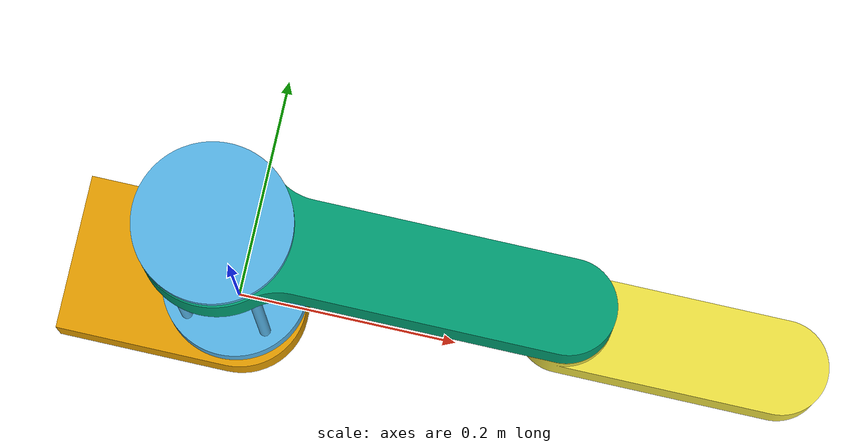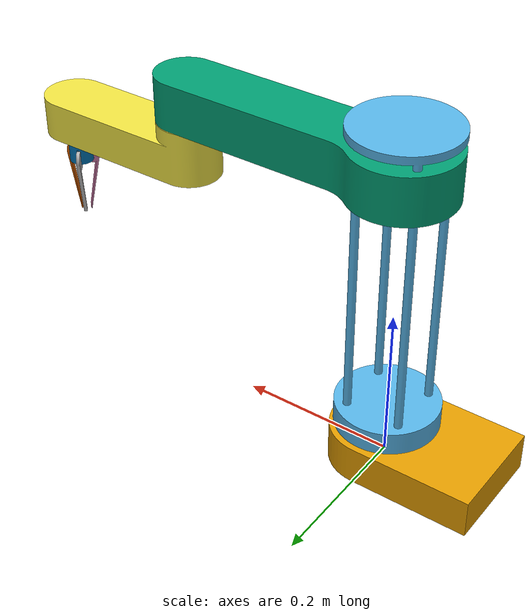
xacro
<?xml version="1.0"?>
<robot xmlns:xacro="http://www.ros.org/wiki/xacro" name="bizon">
    <xacro:arg name="initial_positions_file" default="initial_positions.yaml" />

    <!-- Import bizon urdf file -->
    <xacro:include filename="$(find bizon_description)/urdf/bizon.urdf.xacro" />

    <!-- Import control_xacro -->
    <!--xacro:include filename="bizon.ros2_control.xacro" /-->

    <xacro:bizon_ros2_control name="FakeSystem" initial_positions_file="$(arg initial_positions_file)"/>

</robot>

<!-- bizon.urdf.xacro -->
<robot xmlns:xacro="http://wiki.ros.org/xacro" name="bizon">
    <xacro:arg name="prefix" default="bizon2" />

    <xacro:include
        filename="$(find bizon_description)/urdf/bizon_description.urdf.xacro" />
    <!--xacro:include filename="$(find bizon_description)/urdf/bizon_mk1/hand.xacro" /-->

    <xacro:arg name="port_id" default="30200" />
    <xacro:arg name="ros2_control_hardware_type" default="isaac" />
    <xacro:arg name="controller" default="true" />

    <!--xacro:hand prefix="$(arg prefix)" xyz="0 0 -0.015" rpy="${pi} 0 0"
        connected_to="$(arg prefix)tip_link" safety_distance="0.01" /-->
    <xacro:bizon_macro prefix="$(arg prefix)" port_id="$(arg port_id)"
        ros2_control_hardware_type="$(arg ros2_control_hardware_type)"
        controller="$(arg controller)" />

    <xacro:if value="$(arg controller)">
        <xacro:include filename="$(find bizon_description)/urdf/bizon_system_interface.xacro" />
        <xacro:bizon_system_interface
            ros2_control_hardware_type="$(arg ros2_control_hardware_type)"
            prefix="$(arg prefix)" port_id="$(arg port_id)" />
    </xacro:if>

</robot>

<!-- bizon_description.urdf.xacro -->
<robot xmlns:xacro="http://www.ros.org/wiki/xacro">

    <!--xacro:include
    filename="$(find bizon_description)/urdf/bizon_mk1/bizon_system_interface.xacro" /-->

    <xacro:macro name="bizon_macro"
        params="prefix:=^|bizon/ port_id:=^|30200 ros2_control_hardware_type:=^|rviz controller:=^|false">

        <link name="${prefix}base_link">
            <visual>
                <origin rpy="1.57079632679 0.0 0.0" xyz="-0.150 0.070 0.0" />
                <geometry>
                    <mesh filename="package://bizon_description/meshes/base_link.stl"
                        scale="0.001 0.001 0.001" />
                </geometry>
            </visual>
            <collision>
                <origin rpy="1.57079632679 0.0 0.0" xyz="-0.150 0.070 0.0" />
                <geometry>
                    <mesh filename="package://bizon_description/meshes/base_link.stl"
                        scale="0.001 0.001 0.001" />
                </geometry>
            </collision>
            <inertial>
                <inertia ixx="0.00029" ixy="0.0" ixz="0.0" iyy="0.00029" iyz="0.0" izz="0.00052" />
                <origin rpy="1.57079632679 0.0 0.0" xyz="-0.150 0.070 0.0" />
                <mass value="1.00000" />
            </inertial>
        </link>

        <link name="${prefix}tower_link">
            <collision>
                <origin rpy="0.0 0.0 0.0" xyz="0.0 0.0 0.0" />
                <geometry>
                    <mesh filename="package://bizon_description/meshes/link1.stl"
                        scale="0.001 0.001 0.001" />
                </geometry>
            </collision>
            <inertial>
                <inertia ixx="0.02063" ixy="0.0" ixz="0.00004" iyy="0.02063" iyz="0.00001"
                    izz="0.00118" />
                <origin rpy="0.0 0.0 0.0" xyz="0.0 0.0 0.0" />
                <mass value="1.00000" />
            </inertial>
            <visual>
                <origin rpy="0.0 0.0 0.0" xyz="0.0 0.0 0.0" />
                <geometry>
                    <mesh filename="package://bizon_description/meshes/link1.stl"
                        scale="0.001 0.001 0.001" />
                </geometry>
            </visual>
        </link>

        <link name="${prefix}arm1_link">
            <collision>
                <origin rpy="1.57079632679 0 1.57079632679" xyz="-0.060 -0.060 0.0" />
                <geometry>
                    <mesh filename="package://bizon_description/meshes/link2.stl"
                        scale="0.001 0.001 0.001" />
                </geometry>
            </collision>
            <inertial>
                <inertia ixx="0.00135" ixy="-0.00209" ixz="0.00002" iyy="0.00767" iyz="0.00001"
                    izz="0.00877" />
                <origin rpy="1.57079632679 0 1.57079632679" xyz="-0.060 -0.060 0.0" />
                <mass value="1.00000" />
            </inertial>
            <visual>
                <origin rpy="1.57079632679 0 1.57079632679" xyz="-0.060 -0.060 0.0" />
                <geometry>
                    <mesh filename="package://bizon_description/meshes/link2.stl"
                        scale="0.001 0.001 0.001" />
                </geometry>
            </visual>
        </link>

        <link name="${prefix}arm2_link">
            <collision>
                <origin rpy="-1.57079632679 0.0 0.0" xyz="0.0 0.0 0.0" />
                <geometry>
                    <mesh filename="package://bizon_description/meshes/link3.stl"
                        scale="0.001 0.001 0.001" />
                </geometry>
            </collision>
            <inertial>
                <inertia ixx="0.00135" ixy="-0.00209" ixz="0.00002" iyy="0.00767" iyz="0.00001"
                    izz="0.00877" />
                <origin rpy="-1.57079632679 0.0 0.0" xyz="0.0 0.0 0.0" />
                <mass value="1.00000" />
            </inertial>
            <visual>
                <origin rpy="-1.57079632679 0.0 0.0" xyz="0.0 0.0 0.0" />
                <geometry>
                    <mesh filename="package://bizon_description/meshes/link3.stl"
                        scale="0.001 0.001 0.001" />
                </geometry>
            </visual>
        </link>

        <link name="${prefix}gripper_base_link">
            <visual>
                <origin rpy="0 0.0 0.0" xyz="0.0 0.0 0.0" />
                <geometry>
                    <mesh filename="package://bizon_description/meshes/gripper_base.stl"
                        scale="0.001 0.001 0.001" />
                </geometry>
            </visual>
            <collision>
                <origin rpy="0 0.0 0.0" xyz="0.0 0.0 0.0" />
                <geometry>
                    <mesh filename="package://bizon_description/meshes/gripper_base.stl"
                        scale="0.001 0.001 0.001" />
                </geometry>
            </collision>
            <inertial>
                <inertia ixx="0.0001" ixy="0.0" ixz="0.0" iyy="0.0001" iyz="0.0" izz="0.0001" />
                <origin rpy="0 0.0 0.0" xyz="0.0 0.0 0.0" />
                <mass value="1.000" />
            </inertial>
        </link>

        <link name="${prefix}gripper_finger1_link">
            <visual>
                <origin rpy="0.0 0.0 0.0" xyz="0.0 0.0 0.0" />
                <geometry>
                    <mesh filename="package://bizon_description/meshes/gripper_finger_v2.stl"
                        scale="0.001 0.0015 0.001" />
                </geometry>
            </visual>
            <collision>
                <origin rpy="0.0 0.0 0.0" xyz="0.0 0.0 0.0" />
                <geometry>
                    <mesh filename="package://bizon_description/meshes/gripper_finger_v2.stl"
                        scale="0.001 0.0015 0.001" />
                </geometry>
            </collision>
            <inertial>
                <inertia ixx="0.00001" ixy="0.0" ixz="0.0" iyy="0.00001" iyz="0.0" izz="0.00001" />
                <origin rpy="0.0 0.0 0.0" xyz="0.0 0.0 0.0" />
                <mass value="0.100" />
            </inertial>
        </link>

        <link name="${prefix}gripper_finger2_link">
            <visual>
                <origin rpy="0.0 0.0 0.0" xyz="0.0 0.0 0.0" />
                <geometry>
                    <mesh filename="package://bizon_description/meshes/gripper_finger_v2.stl"
                        scale="0.001 0.0015 0.001" />
                </geometry>
            </visual>
            <collision>
                <origin rpy="0.0 0.0 0.0" xyz="0.0 0.0 0.0" />
                <geometry>
                    <mesh filename="package://bizon_description/meshes/gripper_finger_v2.stl"
                        scale="0.001 0.0015 0.001" />
                </geometry>
            </collision>
            <inertial>
                <inertia ixx="0.00001" ixy="0.0" ixz="0.0" iyy="0.00001" iyz="0.0" izz="0.00001" />
                <origin rpy="0.0 0.0 0.0" xyz="0.0 0.0 0.0" />
                <mass value="0.100" />
            </inertial>
        </link>

        <link name="${prefix}gripper_finger3_link">
            <visual>
                <origin rpy="0.0 0.0 0.0" xyz="0.0 0.0 0.0" />
                <geometry>
                    <mesh filename="package://bizon_description/meshes/gripper_finger_v2.stl"
                        scale="0.001 0.0015 0.001" />
                </geometry>
            </visual>
            <collision>
                <origin rpy="0.0 0.0 0.0" xyz="0.0 0.0 0.0" />
                <geometry>
                    <mesh filename="package://bizon_description/meshes/gripper_finger_v2.stl"
                        scale="0.001 0.0015 0.001" />
                </geometry>
            </collision>
            <inertial>
                <inertia ixx="0.00001" ixy="0.0" ixz="0.0" iyy="0.00001" iyz="0.0" izz="0.00001" />
                <origin rpy="0.0 0.0 0.0" xyz="0.0 0.0 0.0" />
                <mass value="0.100" />
            </inertial>
        </link>

        <joint name="${prefix}rev1" type="revolute">
            <limit lower="-3.14" upper="3.14" effort="0.0" velocity="12.56" />
            <origin rpy="0.0 0.0 0.0" xyz="0.0 0.0 0.045" />
            <parent link="${prefix}base_link" />
            <child link="${prefix}tower_link" />
            <axis xyz="0.0 0.0 1.00000" />
        </joint>

        <joint name="${prefix}pris1" type="prismatic">
            <limit lower="0.0" upper="0.28" effort="100.0" velocity="0.5" />
            <origin rpy="0.0 0.0 0.0" xyz="0 0 0.38" />
            <parent link="${prefix}tower_link" />
            <child link="${prefix}arm1_link" />
            <axis xyz="0.0 0.0 -1.0" />
        </joint>

        <joint name="${prefix}rev2" type="revolute">
            <limit lower="-3.14" upper="3.14" effort="0.0" velocity="12.56" />
            <origin rpy="0.0 0.0 0.0" xyz="0.29 0 -0.135" />
            <parent link="${prefix}arm1_link" />
            <child link="${prefix}arm2_link" />
            <axis xyz="0.0 0.0 1.0" />
        </joint>

        <joint name="${prefix}rev3" type="revolute">
            <limit effort="0.0" lower="-3.14" upper="3.14" velocity="12.56" />
            <origin rpy="3.1415 0.0 0.0" xyz="0.18 0.0 0.0" />
            <parent link="${prefix}arm2_link" />
            <child link="${prefix}gripper_base_link" />
            <axis xyz="0.0 0.0 1.0" />
        </joint>

        <joint name="${prefix}gripper_finger1_joint" type="revolute">
            <limit effort="5.0" lower="-0.06" upper="0.41" velocity="12.56" />
            <origin rpy="-1.57079632679 3.14159265359 0.0" xyz="0.015 0.0 0.035" />
            <parent link="${prefix}gripper_base_link" />
            <child link="${prefix}gripper_finger1_link" />
            <axis xyz="0.0 0.0 1.0" />
        </joint>

        <joint name="${prefix}gripper_finger2_joint" type="revolute">
            <limit effort="5.0" lower="-0.06" upper="0.41" velocity="12.56" />
            <origin rpy="-1.57079632679 -3.14159265359 2.09439510238" xyz="-0.0075 0.01299038105 0.035" />
            <parent link="${prefix}gripper_base_link" />
            <child link="${prefix}gripper_finger2_link" />
            <axis xyz="0.0 0.0 1.0" />
        </joint>

        <joint name="${prefix}gripper_finger3_joint" type="revolute">
            <limit effort="5.0" lower="-0.06" upper="0.41" velocity="12.56" />
            <origin rpy="-1.57079632679 -3.14159265359 -2.09439510238" xyz="-0.0075 -0.01299038105 0.035" />
            <parent link="${prefix}gripper_base_link" />
            <child link="${prefix}gripper_finger3_link" />
            <axis xyz="0.0 0.0 1.0" />
        </joint>

    </xacro:macro>

</robot>
